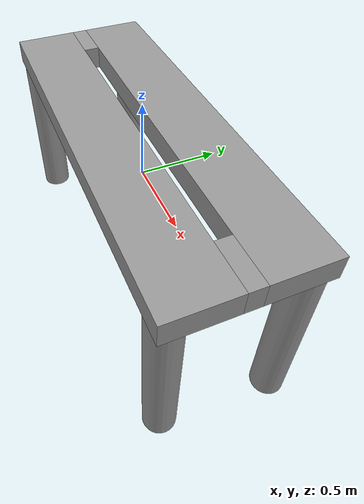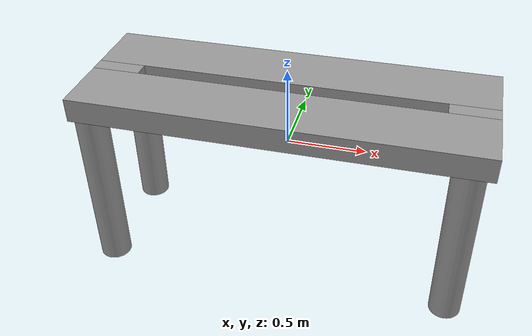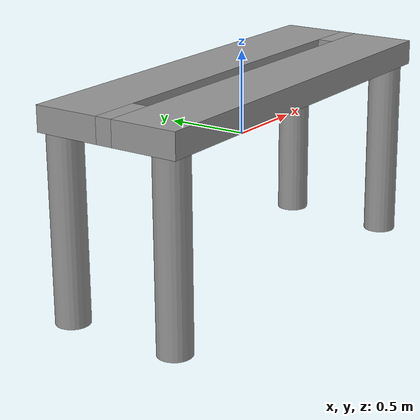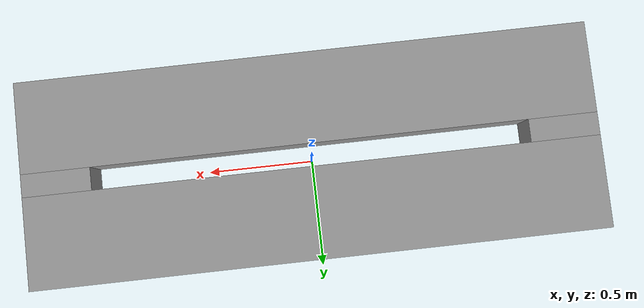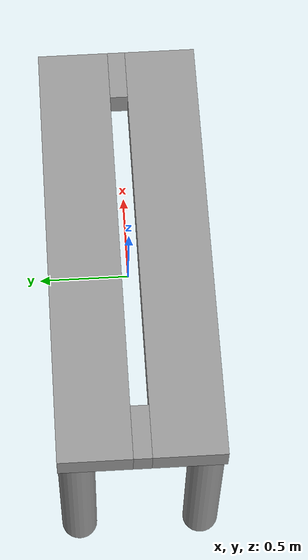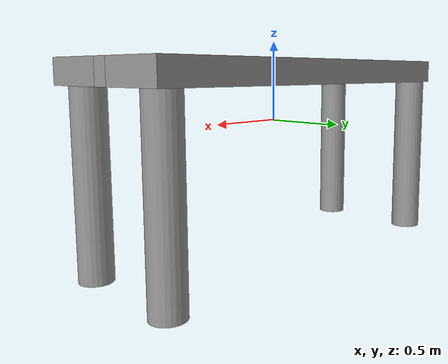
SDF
<?xml version='1.0'?>
<sdf version='1.6'>
  <model name='work_table'>
    <link name='link_0'>
      <pose frame=''>1.115 -0.35 -0.3125 0 -0 0</pose>
      <inertial>
        <mass>1</mass>
        <inertia>
          <ixx>0.145833</ixx>
          <ixy>0</ixy>
          <ixz>0</ixz>
          <iyy>0.145833</iyy>
          <iyz>0</iyz>
          <izz>0.125</izz>
        </inertia>
        <pose frame=''>0 0 0 0 -0 0</pose>
      </inertial>
      <gravity>1</gravity>
      <self_collide>0</self_collide>
      <kinematic>0</kinematic>
      <visual name='visual'>
        <pose frame=''>0 0 0 0 -0 0</pose>
        <geometry>
          <cylinder>
            <radius>0.1</radius>
            <length>1.1</length>
          </cylinder>
        </geometry>
        <material>
          <lighting>1</lighting>
          <script>
            <uri>file://media/materials/scripts/gazebo.material</uri>
            <name>Gazebo/Grey</name>
          </script>
          <ambient>0.3 0.3 0.3 1</ambient>
          <diffuse>0.7 0.7 0.7 1</diffuse>
          <specular>0.01 0.01 0.01 1</specular>
          <emissive>0 0 0 1</emissive>
          <shader type='vertex'>
            <normal_map>__default__</normal_map>
          </shader>
        </material>
        <transparency>0</transparency>
        <cast_shadows>1</cast_shadows>
      </visual>
      <collision name='collision'>
        <laser_retro>0</laser_retro>
        <max_contacts>10</max_contacts>
        <pose frame=''>0 0 0 0 -0 0</pose>
        <geometry>
          <cylinder>
            <radius>0.1</radius>
            <length>1.1</length>
          </cylinder>
        </geometry>
        <surface>
          <friction>
            <ode>
              <mu>1</mu>
              <mu2>1</mu2>
              <fdir1>0 0 0</fdir1>
              <slip1>0</slip1>
              <slip2>0</slip2>
            </ode>
            <torsional>
              <coefficient>1</coefficient>
              <patch_radius>0</patch_radius>
              <surface_radius>0</surface_radius>
              <use_patch_radius>1</use_patch_radius>
              <ode>
                <slip>0</slip>
              </ode>
            </torsional>
          </friction>
          <bounce>
            <restitution_coefficient>0</restitution_coefficient>
            <threshold>1e+06</threshold>
          </bounce>
          <contact>
            <collide_without_contact>0</collide_without_contact>
            <collide_without_contact_bitmask>1</collide_without_contact_bitmask>
            <collide_bitmask>1</collide_bitmask>
            <ode>
              <soft_cfm>0</soft_cfm>
              <soft_erp>0.2</soft_erp>
              <kp>1e+13</kp>
              <kd>1</kd>
              <max_vel>0.01</max_vel>
              <min_depth>0</min_depth>
            </ode>
            <bullet>
              <split_impulse>1</split_impulse>
              <split_impulse_penetration_threshold>-0.01</split_impulse_penetration_threshold>
              <soft_cfm>0</soft_cfm>
              <soft_erp>0.2</soft_erp>
              <kp>1e+13</kp>
              <kd>1</kd>
            </bullet>
          </contact>
        </surface>
      </collision>
    </link>
    <link name='link_0_clone'>
      <pose frame=''>-1.145 -0.35 -0.3125 0 -0 0</pose>
      <inertial>
        <mass>1</mass>
        <inertia>
          <ixx>0.145833</ixx>
          <ixy>0</ixy>
          <ixz>0</ixz>
          <iyy>0.145833</iyy>
          <iyz>0</iyz>
          <izz>0.125</izz>
        </inertia>
        <pose frame=''>0 0 0 0 -0 0</pose>
      </inertial>
      <self_collide>0</self_collide>
      <kinematic>0</kinematic>
      <visual name='visual'>
        <pose frame=''>0 0 0 0 -0 0</pose>
        <geometry>
          <cylinder>
            <radius>0.1</radius>
            <length>1.1</length>
          </cylinder>
        </geometry>
        <material>
          <lighting>1</lighting>
          <script>
            <uri>file://media/materials/scripts/gazebo.material</uri>
            <name>Gazebo/Grey</name>
          </script>
          <ambient>0.3 0.3 0.3 1</ambient>
          <diffuse>0.7 0.7 0.7 1</diffuse>
          <specular>0.01 0.01 0.01 1</specular>
          <emissive>0 0 0 1</emissive>
          <shader type='vertex'>
            <normal_map>__default__</normal_map>
          </shader>
        </material>
        <transparency>0</transparency>
        <cast_shadows>1</cast_shadows>
      </visual>
      <collision name='collision'>
        <laser_retro>0</laser_retro>
        <max_contacts>10</max_contacts>
        <pose frame=''>0 0 0 0 -0 0</pose>
        <geometry>
          <cylinder>
            <radius>0.1</radius>
            <length>1.1</length>
          </cylinder>
        </geometry>
        <surface>
          <friction>
            <ode>
              <mu>1</mu>
              <mu2>1</mu2>
              <fdir1>0 0 0</fdir1>
              <slip1>0</slip1>
              <slip2>0</slip2>
            </ode>
            <torsional>
              <coefficient>1</coefficient>
              <patch_radius>0</patch_radius>
              <surface_radius>0</surface_radius>
              <use_patch_radius>1</use_patch_radius>
              <ode>
                <slip>0</slip>
              </ode>
            </torsional>
          </friction>
          <bounce>
            <restitution_coefficient>0</restitution_coefficient>
            <threshold>1e+06</threshold>
          </bounce>
          <contact>
            <collide_without_contact>0</collide_without_contact>
            <collide_without_contact_bitmask>1</collide_without_contact_bitmask>
            <collide_bitmask>1</collide_bitmask>
            <ode>
              <soft_cfm>0</soft_cfm>
              <soft_erp>0.2</soft_erp>
              <kp>1e+13</kp>
              <kd>1</kd>
              <max_vel>0.01</max_vel>
              <min_depth>0</min_depth>
            </ode>
            <bullet>
              <split_impulse>1</split_impulse>
              <split_impulse_penetration_threshold>-0.01</split_impulse_penetration_threshold>
              <soft_cfm>0</soft_cfm>
              <soft_erp>0.2</soft_erp>
              <kp>1e+13</kp>
              <kd>1</kd>
            </bullet>
          </contact>
        </surface>
      </collision>
    </link>
    <link name='link_0_clone_0'>
      <pose frame=''>-1.145 0.35 -0.3125 0 -0 0</pose>
      <inertial>
        <mass>1</mass>
        <inertia>
          <ixx>0.145833</ixx>
          <ixy>0</ixy>
          <ixz>0</ixz>
          <iyy>0.145833</iyy>
          <iyz>0</iyz>
          <izz>0.125</izz>
        </inertia>
        <pose frame=''>0 0 0 0 -0 0</pose>
      </inertial>
      <self_collide>0</self_collide>
      <kinematic>0</kinematic>
      <visual name='visual'>
        <pose frame=''>0 0 0 0 -0 0</pose>
        <geometry>
          <cylinder>
            <radius>0.1</radius>
            <length>1.1</length>
          </cylinder>
        </geometry>
        <material>
          <lighting>1</lighting>
          <script>
            <uri>file://media/materials/scripts/gazebo.material</uri>
            <name>Gazebo/Grey</name>
          </script>
          <ambient>0.3 0.3 0.3 1</ambient>
          <diffuse>0.7 0.7 0.7 1</diffuse>
          <specular>0.01 0.01 0.01 1</specular>
          <emissive>0 0 0 1</emissive>
          <shader type='vertex'>
            <normal_map>__default__</normal_map>
          </shader>
        </material>
        <transparency>0</transparency>
        <cast_shadows>1</cast_shadows>
      </visual>
      <collision name='collision'>
        <laser_retro>0</laser_retro>
        <max_contacts>10</max_contacts>
        <pose frame=''>0 0 0 0 -0 0</pose>
        <geometry>
          <cylinder>
            <radius>0.1</radius>
            <length>1.1</length>
          </cylinder>
        </geometry>
        <surface>
          <friction>
            <ode>
              <mu>1</mu>
              <mu2>1</mu2>
              <fdir1>0 0 0</fdir1>
              <slip1>0</slip1>
              <slip2>0</slip2>
            </ode>
            <torsional>
              <coefficient>1</coefficient>
              <patch_radius>0</patch_radius>
              <surface_radius>0</surface_radius>
              <use_patch_radius>1</use_patch_radius>
              <ode>
                <slip>0</slip>
              </ode>
            </torsional>
          </friction>
          <bounce>
            <restitution_coefficient>0</restitution_coefficient>
            <threshold>1e+06</threshold>
          </bounce>
          <contact>
            <collide_without_contact>0</collide_without_contact>
            <collide_without_contact_bitmask>1</collide_without_contact_bitmask>
            <collide_bitmask>1</collide_bitmask>
            <ode>
              <soft_cfm>0</soft_cfm>
              <soft_erp>0.2</soft_erp>
              <kp>1e+13</kp>
              <kd>1</kd>
              <max_vel>0.01</max_vel>
              <min_depth>0</min_depth>
            </ode>
            <bullet>
              <split_impulse>1</split_impulse>
              <split_impulse_penetration_threshold>-0.01</split_impulse_penetration_threshold>
              <soft_cfm>0</soft_cfm>
              <soft_erp>0.2</soft_erp>
              <kp>1e+13</kp>
              <kd>1</kd>
            </bullet>
          </contact>
        </surface>
      </collision>
    </link>
    <link name='link_0_clone_1'>
      <pose frame=''>1.155 0.35 -0.3125 0 -0 0</pose>
      <inertial>
        <mass>1</mass>
        <inertia>
          <ixx>0.145833</ixx>
          <ixy>0</ixy>
          <ixz>0</ixz>
          <iyy>0.145833</iyy>
          <iyz>0</iyz>
          <izz>0.125</izz>
        </inertia>
        <pose frame=''>0 0 0 0 -0 0</pose>
      </inertial>
      <self_collide>0</self_collide>
      <kinematic>0</kinematic>
      <visual name='visual'>
        <pose frame=''>0 0 0 0 -0 0</pose>
        <geometry>
          <cylinder>
            <radius>0.1</radius>
            <length>1.1</length>
          </cylinder>
        </geometry>
        <material>
          <lighting>1</lighting>
          <script>
            <uri>file://media/materials/scripts/gazebo.material</uri>
            <name>Gazebo/Grey</name>
          </script>
          <ambient>0.3 0.3 0.3 1</ambient>
          <diffuse>0.7 0.7 0.7 1</diffuse>
          <specular>0.01 0.01 0.01 1</specular>
          <emissive>0 0 0 1</emissive>
          <shader type='vertex'>
            <normal_map>__default__</normal_map>
          </shader>
        </material>
        <transparency>0</transparency>
        <cast_shadows>1</cast_shadows>
      </visual>
      <collision name='collision'>
        <laser_retro>0</laser_retro>
        <max_contacts>10</max_contacts>
        <pose frame=''>0 0 0 0 -0 0</pose>
        <geometry>
          <cylinder>
            <radius>0.1</radius>
            <length>1.1</length>
          </cylinder>
        </geometry>
        <surface>
          <friction>
            <ode>
              <mu>1</mu>
              <mu2>1</mu2>
              <fdir1>0 0 0</fdir1>
              <slip1>0</slip1>
              <slip2>0</slip2>
            </ode>
            <torsional>
              <coefficient>1</coefficient>
              <patch_radius>0</patch_radius>
              <surface_radius>0</surface_radius>
              <use_patch_radius>1</use_patch_radius>
              <ode>
                <slip>0</slip>
              </ode>
            </torsional>
          </friction>
          <bounce>
            <restitution_coefficient>0</restitution_coefficient>
            <threshold>1e+06</threshold>
          </bounce>
          <contact>
            <collide_without_contact>0</collide_without_contact>
            <collide_without_contact_bitmask>1</collide_without_contact_bitmask>
            <collide_bitmask>1</collide_bitmask>
            <ode>
              <soft_cfm>0</soft_cfm>
              <soft_erp>0.2</soft_erp>
              <kp>1e+13</kp>
              <kd>1</kd>
              <max_vel>0.01</max_vel>
              <min_depth>0</min_depth>
            </ode>
            <bullet>
              <split_impulse>1</split_impulse>
              <split_impulse_penetration_threshold>-0.01</split_impulse_penetration_threshold>
              <soft_cfm>0</soft_cfm>
              <soft_erp>0.2</soft_erp>
              <kp>1e+13</kp>
              <kd>1</kd>
            </bullet>
          </contact>
        </surface>
      </collision>
    </link>
    <link name='link_1'>
      <pose frame=''>0.005 -0.25 0.3125 0 -0 0</pose>
      <inertial>
        <mass>1</mass>
        <inertia>
          <ixx>0.166667</ixx>
          <ixy>0</ixy>
          <ixz>0</ixz>
          <iyy>0.166667</iyy>
          <iyz>0</iyz>
          <izz>0.166667</izz>
        </inertia>
        <pose frame=''>0 0 0 0 -0 0</pose>
      </inertial>
      <gravity>1</gravity>
      <self_collide>0</self_collide>
      <kinematic>0</kinematic>
      <visual name='visual'>
        <pose frame=''>0 0 0 0 -0 0</pose>
        <geometry>
          <box>
            <size>2.5 0.4 0.15</size>
          </box>
        </geometry>
        <material>
          <lighting>1</lighting>
          <script>
            <uri>file://media/materials/scripts/gazebo.material</uri>
            <name>Gazebo/Grey</name>
          </script>
          <ambient>0.3 0.3 0.3 1</ambient>
          <diffuse>0.7 0.7 0.7 1</diffuse>
          <specular>0.01 0.01 0.01 1</specular>
          <emissive>0 0 0 1</emissive>
          <shader type='vertex'>
            <normal_map>__default__</normal_map>
          </shader>
        </material>
        <transparency>0</transparency>
        <cast_shadows>1</cast_shadows>
      </visual>
      <collision name='collision'>
        <laser_retro>0</laser_retro>
        <max_contacts>10</max_contacts>
        <pose frame=''>0 0 0 0 -0 0</pose>
        <geometry>
          <box>
            <size>2.5 0.4 0.15</size>
          </box>
        </geometry>
        <surface>
          <friction>
            <ode>
              <mu>1</mu>
              <mu2>1</mu2>
              <fdir1>0 0 0</fdir1>
              <slip1>0</slip1>
              <slip2>0</slip2>
            </ode>
            <torsional>
              <coefficient>1</coefficient>
              <patch_radius>0</patch_radius>
              <surface_radius>0</surface_radius>
              <use_patch_radius>1</use_patch_radius>
              <ode>
                <slip>0</slip>
              </ode>
            </torsional>
          </friction>
          <bounce>
            <restitution_coefficient>0</restitution_coefficient>
            <threshold>1e+06</threshold>
          </bounce>
          <contact>
            <collide_without_contact>0</collide_without_contact>
            <collide_without_contact_bitmask>1</collide_without_contact_bitmask>
            <collide_bitmask>1</collide_bitmask>
            <ode>
              <soft_cfm>0</soft_cfm>
              <soft_erp>0.2</soft_erp>
              <kp>1e+13</kp>
              <kd>1</kd>
              <max_vel>0.01</max_vel>
              <min_depth>0</min_depth>
            </ode>
            <bullet>
              <split_impulse>1</split_impulse>
              <split_impulse_penetration_threshold>-0.01</split_impulse_penetration_threshold>
              <soft_cfm>0</soft_cfm>
              <soft_erp>0.2</soft_erp>
              <kp>1e+13</kp>
              <kd>1</kd>
            </bullet>
          </contact>
        </surface>
      </collision>
    </link>
    <link name='link_1_clone'>
      <pose frame=''>0.005 0.25 0.3125 0 -0 0</pose>
      <inertial>
        <mass>1</mass>
        <inertia>
          <ixx>0.166667</ixx>
          <ixy>0</ixy>
          <ixz>0</ixz>
          <iyy>0.166667</iyy>
          <iyz>0</iyz>
          <izz>0.166667</izz>
        </inertia>
        <pose frame=''>0 0 0 0 -0 0</pose>
      </inertial>
      <self_collide>0</self_collide>
      <kinematic>0</kinematic>
      <visual name='visual'>
        <pose frame=''>0 0 0 0 -0 0</pose>
        <geometry>
          <box>
            <size>2.5 0.4 0.15</size>
          </box>
        </geometry>
        <material>
          <lighting>1</lighting>
          <script>
            <uri>file://media/materials/scripts/gazebo.material</uri>
            <name>Gazebo/Grey</name>
          </script>
          <ambient>0.3 0.3 0.3 1</ambient>
          <diffuse>0.7 0.7 0.7 1</diffuse>
          <specular>0.01 0.01 0.01 1</specular>
          <emissive>0 0 0 1</emissive>
          <shader type='vertex'>
            <normal_map>__default__</normal_map>
          </shader>
        </material>
        <transparency>0</transparency>
        <cast_shadows>1</cast_shadows>
      </visual>
      <collision name='collision'>
        <laser_retro>0</laser_retro>
        <max_contacts>10</max_contacts>
        <pose frame=''>0 0 0 0 -0 0</pose>
        <geometry>
          <box>
            <size>2.5 0.4 0.15</size>
          </box>
        </geometry>
        <surface>
          <friction>
            <ode>
              <mu>1</mu>
              <mu2>1</mu2>
              <fdir1>0 0 0</fdir1>
              <slip1>0</slip1>
              <slip2>0</slip2>
            </ode>
            <torsional>
              <coefficient>1</coefficient>
              <patch_radius>0</patch_radius>
              <surface_radius>0</surface_radius>
              <use_patch_radius>1</use_patch_radius>
              <ode>
                <slip>0</slip>
              </ode>
            </torsional>
          </friction>
          <bounce>
            <restitution_coefficient>0</restitution_coefficient>
            <threshold>1e+06</threshold>
          </bounce>
          <contact>
            <collide_without_contact>0</collide_without_contact>
            <collide_without_contact_bitmask>1</collide_without_contact_bitmask>
            <collide_bitmask>1</collide_bitmask>
            <ode>
              <soft_cfm>0</soft_cfm>
              <soft_erp>0.2</soft_erp>
              <kp>1e+13</kp>
              <kd>1</kd>
              <max_vel>0.01</max_vel>
              <min_depth>0</min_depth>
            </ode>
            <bullet>
              <split_impulse>1</split_impulse>
              <split_impulse_penetration_threshold>-0.01</split_impulse_penetration_threshold>
              <soft_cfm>0</soft_cfm>
              <soft_erp>0.2</soft_erp>
              <kp>1e+13</kp>
              <kd>1</kd>
            </bullet>
          </contact>
        </surface>
      </collision>
    </link>
    <link name='link_1_clone_0'>
      <pose frame=''>-1.095 0 0.3125 0 -0 0</pose>
      <inertial>
        <mass>1</mass>
        <inertia>
          <ixx>0.166667</ixx>
          <ixy>0</ixy>
          <ixz>0</ixz>
          <iyy>0.166667</iyy>
          <iyz>0</iyz>
          <izz>0.166667</izz>
        </inertia>
        <pose frame=''>0 0 0 0 -0 0</pose>
      </inertial>
      <self_collide>0</self_collide>
      <kinematic>0</kinematic>
      <gravity>1</gravity>
      <visual name='visual'>
        <pose frame=''>0 0 0 0 -0 0</pose>
        <geometry>
          <box>
            <size>0.3 0.1 0.15</size>
          </box>
        </geometry>
        <material>
          <lighting>1</lighting>
          <script>
            <uri>file://media/materials/scripts/gazebo.material</uri>
            <name>Gazebo/Grey</name>
          </script>
          <ambient>0.3 0.3 0.3 1</ambient>
          <diffuse>0.7 0.7 0.7 1</diffuse>
          <specular>0.01 0.01 0.01 1</specular>
          <emissive>0 0 0 1</emissive>
          <shader type='vertex'>
            <normal_map>__default__</normal_map>
          </shader>
        </material>
        <transparency>0</transparency>
        <cast_shadows>1</cast_shadows>
      </visual>
      <collision name='collision'>
        <laser_retro>0</laser_retro>
        <max_contacts>10</max_contacts>
        <pose frame=''>0 0 0 0 -0 0</pose>
        <geometry>
          <box>
            <size>0.3 0.1 0.15</size>
          </box>
        </geometry>
        <surface>
          <friction>
            <ode>
              <mu>1</mu>
              <mu2>1</mu2>
              <fdir1>0 0 0</fdir1>
              <slip1>0</slip1>
              <slip2>0</slip2>
            </ode>
            <torsional>
              <coefficient>1</coefficient>
              <patch_radius>0</patch_radius>
              <surface_radius>0</surface_radius>
              <use_patch_radius>1</use_patch_radius>
              <ode>
                <slip>0</slip>
              </ode>
            </torsional>
          </friction>
          <bounce>
            <restitution_coefficient>0</restitution_coefficient>
            <threshold>1e+06</threshold>
          </bounce>
          <contact>
            <collide_without_contact>0</collide_without_contact>
            <collide_without_contact_bitmask>1</collide_without_contact_bitmask>
            <collide_bitmask>1</collide_bitmask>
            <ode>
              <soft_cfm>0</soft_cfm>
              <soft_erp>0.2</soft_erp>
              <kp>1e+13</kp>
              <kd>1</kd>
              <max_vel>0.01</max_vel>
              <min_depth>0</min_depth>
            </ode>
            <bullet>
              <split_impulse>1</split_impulse>
              <split_impulse_penetration_threshold>-0.01</split_impulse_penetration_threshold>
              <soft_cfm>0</soft_cfm>
              <soft_erp>0.2</soft_erp>
              <kp>1e+13</kp>
              <kd>1</kd>
            </bullet>
          </contact>
        </surface>
      </collision>
    </link>
    <link name='link_1_clone_0_clone'>
      <pose frame=''>1.105 0 0.3125 0 -0 0</pose>
      <inertial>
        <mass>1</mass>
        <inertia>
          <ixx>0.166667</ixx>
          <ixy>0</ixy>
          <ixz>0</ixz>
          <iyy>0.166667</iyy>
          <iyz>0</iyz>
          <izz>0.166667</izz>
        </inertia>
        <pose frame=''>0 0 0 0 -0 0</pose>
      </inertial>
      <self_collide>0</self_collide>
      <kinematic>0</kinematic>
      <visual name='visual'>
        <pose frame=''>0 0 0 0 -0 0</pose>
        <geometry>
          <box>
            <size>0.3 0.1 0.15</size>
          </box>
        </geometry>
        <material>
          <lighting>1</lighting>
          <script>
            <uri>file://media/materials/scripts/gazebo.material</uri>
            <name>Gazebo/Grey</name>
          </script>
          <ambient>0.3 0.3 0.3 1</ambient>
          <diffuse>0.7 0.7 0.7 1</diffuse>
          <specular>0.01 0.01 0.01 1</specular>
          <emissive>0 0 0 1</emissive>
          <shader type='vertex'>
            <normal_map>__default__</normal_map>
          </shader>
        </material>
        <transparency>0</transparency>
        <cast_shadows>1</cast_shadows>
      </visual>
      <collision name='collision'>
        <laser_retro>0</laser_retro>
        <max_contacts>10</max_contacts>
        <pose frame=''>0 0 0 0 -0 0</pose>
        <geometry>
          <box>
            <size>0.3 0.1 0.15</size>
          </box>
        </geometry>
        <surface>
          <friction>
            <ode>
              <mu>1</mu>
              <mu2>1</mu2>
              <fdir1>0 0 0</fdir1>
              <slip1>0</slip1>
              <slip2>0</slip2>
            </ode>
            <torsional>
              <coefficient>1</coefficient>
              <patch_radius>0</patch_radius>
              <surface_radius>0</surface_radius>
              <use_patch_radius>1</use_patch_radius>
              <ode>
                <slip>0</slip>
              </ode>
            </torsional>
          </friction>
          <bounce>
            <restitution_coefficient>0</restitution_coefficient>
            <threshold>1e+06</threshold>
          </bounce>
          <contact>
            <collide_without_contact>0</collide_without_contact>
            <collide_without_contact_bitmask>1</collide_without_contact_bitmask>
            <collide_bitmask>1</collide_bitmask>
            <ode>
              <soft_cfm>0</soft_cfm>
              <soft_erp>0.2</soft_erp>
              <kp>1e+13</kp>
              <kd>1</kd>
              <max_vel>0.01</max_vel>
              <min_depth>0</min_depth>
            </ode>
            <bullet>
              <split_impulse>1</split_impulse>
              <split_impulse_penetration_threshold>-0.01</split_impulse_penetration_threshold>
              <soft_cfm>0</soft_cfm>
              <soft_erp>0.2</soft_erp>
              <kp>1e+13</kp>
              <kd>1</kd>
            </bullet>
          </contact>
        </surface>
      </collision>
    </link>
    <joint name='link_1_JOINT_0' type='fixed'>
      <parent>link_1</parent>
      <child>link_1_clone_0</child>
      <pose frame=''>0 0 0 0 -0 0</pose>
      <physics>
        <ode>
          <limit>
            <cfm>0</cfm>
            <erp>0.2</erp>
          </limit>
          <suspension>
            <cfm>0</cfm>
            <erp>0.2</erp>
          </suspension>
        </ode>
      </physics>
    </joint>
    <joint name='link_1_JOINT_1' type='fixed'>
      <parent>link_1</parent>
      <child>link_1_clone_0_clone</child>
      <pose frame=''>0 0 0 0 -0 0</pose>
      <physics>
        <ode>
          <limit>
            <cfm>0</cfm>
            <erp>0.2</erp>
          </limit>
          <suspension>
            <cfm>0</cfm>
            <erp>0.2</erp>
          </suspension>
        </ode>
      </physics>
    </joint>
    <joint name='link_1_JOINT_2' type='fixed'>
      <parent>link_1</parent>
      <child>link_1_clone</child>
      <pose frame=''>0 0 0 0 -0 0</pose>
      <physics>
        <ode>
          <limit>
            <cfm>0</cfm>
            <erp>0.2</erp>
          </limit>
          <suspension>
            <cfm>0</cfm>
            <erp>0.2</erp>
          </suspension>
        </ode>
      </physics>
    </joint>
    <joint name='link_1_JOINT_3' type='fixed'>
      <parent>link_1</parent>
      <child>link_0_clone</child>
      <pose frame=''>0 0 0 0 -0 0</pose>
      <physics>
        <ode>
          <limit>
            <cfm>0</cfm>
            <erp>0.2</erp>
          </limit>
          <suspension>
            <cfm>0</cfm>
            <erp>0.2</erp>
          </suspension>
        </ode>
      </physics>
    </joint>
    <joint name='link_1_JOINT_4' type='fixed'>
      <parent>link_1</parent>
      <child>link_0</child>
      <pose frame=''>0 0 0 0 -0 0</pose>
      <physics>
        <ode>
          <limit>
            <cfm>0</cfm>
            <erp>0.2</erp>
          </limit>
          <suspension>
            <cfm>0</cfm>
            <erp>0.2</erp>
          </suspension>
        </ode>
      </physics>
    </joint>
    <joint name='link_1_clone_JOINT_5' type='fixed'>
      <parent>link_1_clone</parent>
      <child>link_0_clone_0</child>
      <pose frame=''>0 0 0 0 -0 0</pose>
      <physics>
        <ode>
          <limit>
            <cfm>0</cfm>
            <erp>0.2</erp>
          </limit>
          <suspension>
            <cfm>0</cfm>
            <erp>0.2</erp>
          </suspension>
        </ode>
      </physics>
    </joint>
    <joint name='link_1_clone_JOINT_6' type='fixed'>
      <parent>link_1_clone</parent>
      <child>link_0_clone_1</child>
      <pose frame=''>0 0 0 0 -0 0</pose>
      <physics>
        <ode>
          <limit>
            <cfm>0</cfm>
            <erp>0.2</erp>
          </limit>
          <suspension>
            <cfm>0</cfm>
            <erp>0.2</erp>
          </suspension>
        </ode>
      </physics>
    </joint>
    <static>0</static>
    <allow_auto_disable>1</allow_auto_disable>
  </model>
</sdf>
